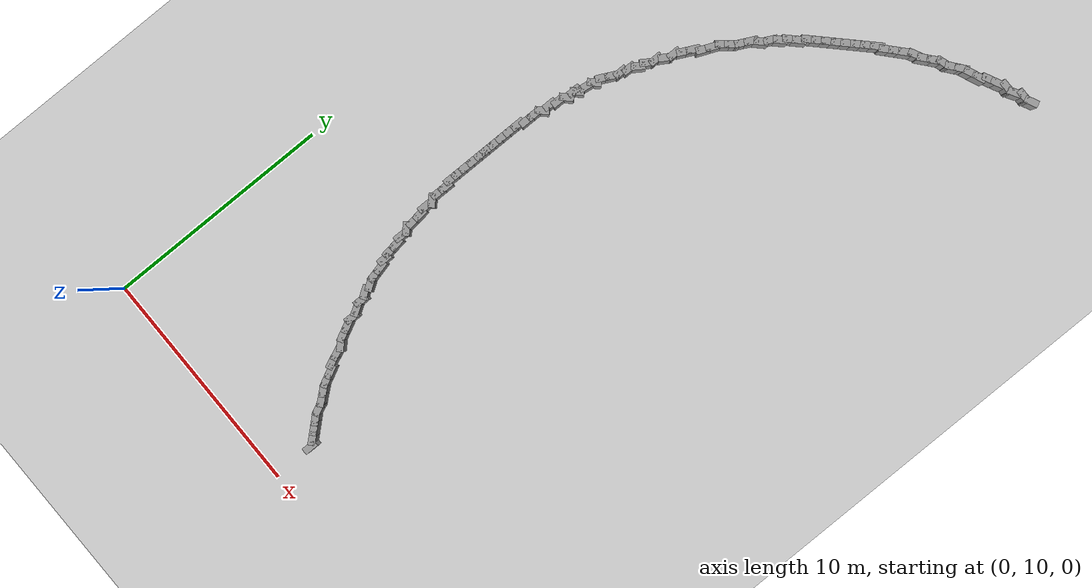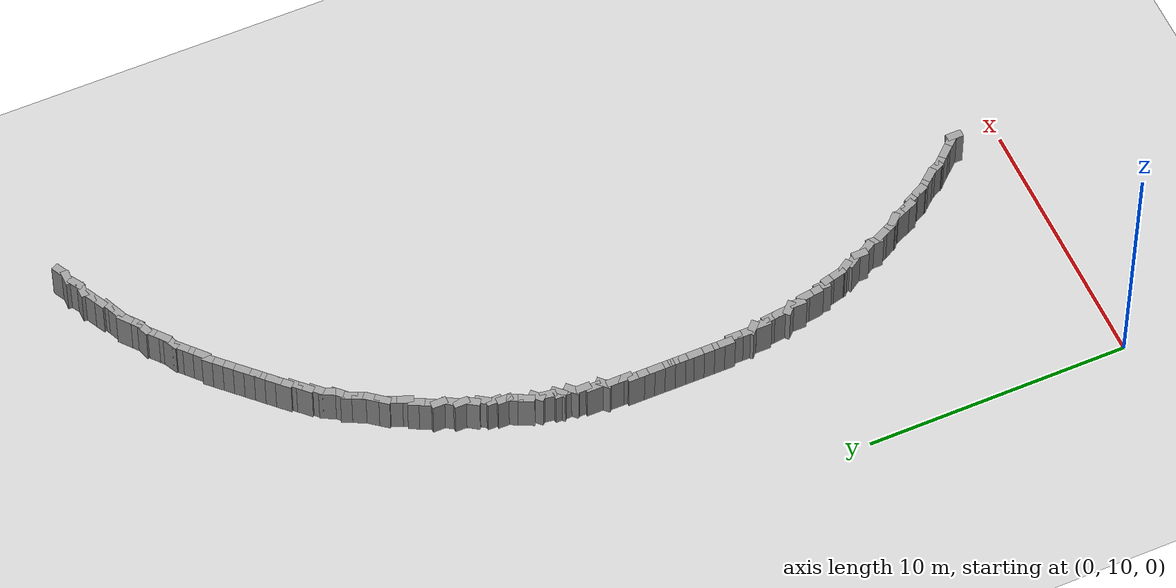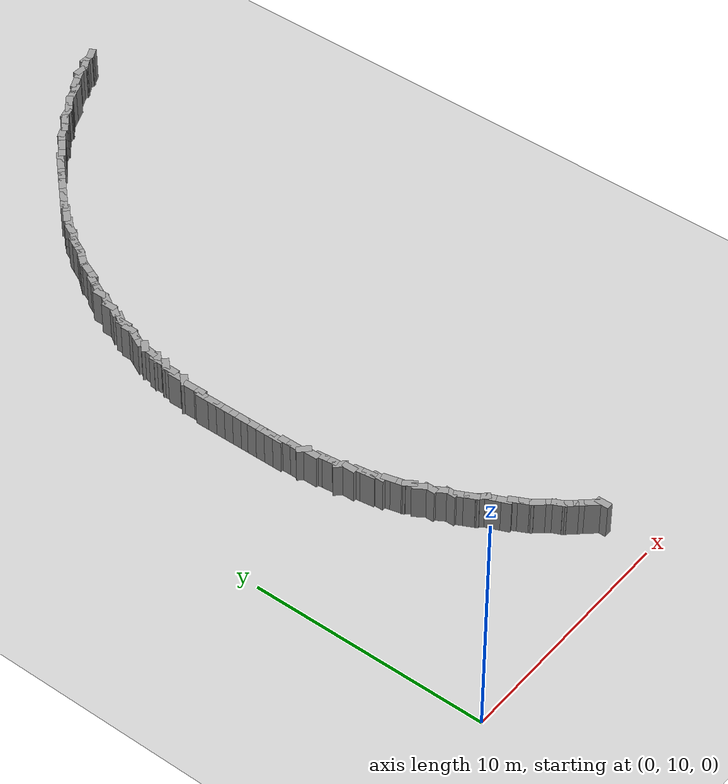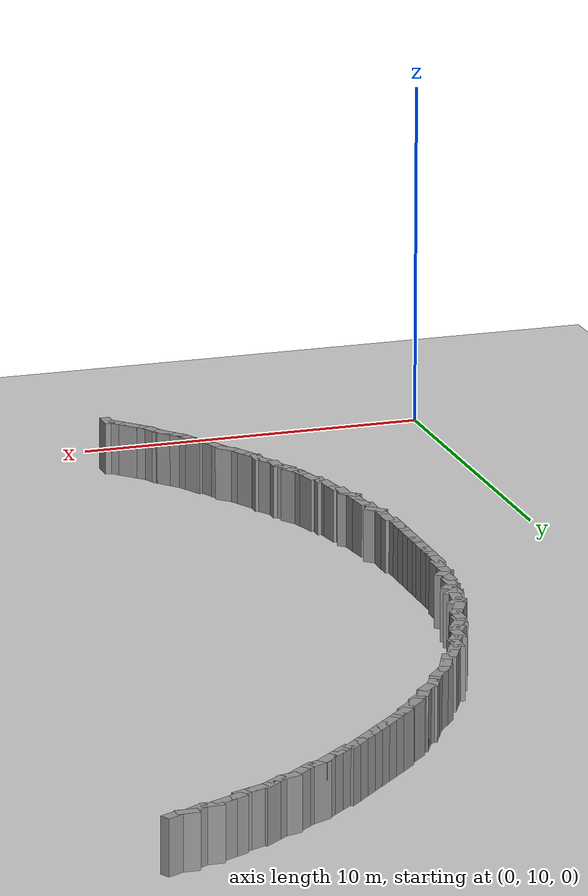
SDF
<sdf version="1.5">
 <world name="test_figure8">
  <include><uri>model://sun</uri></include>
  <include><uri>model://ground_plane</uri></include>
  <model name="curbL_0">
   <static>true</static>
   <pose>5.500 29.400 0.750 0 0 -1.571</pose>
   <link name="link">
    <collision name="collision"><geometry><box><size>0.600 0.300 1.500</size></box></geometry></collision>
    <visual name="visual">
     <geometry><box><size>0.600 0.300 1.500</size></box></geometry>
     <material><ambient>0.6 0.6 0.6 1</ambient><diffuse>0.6 0.6 0.6 1</diffuse></material>
    </visual>
   </link>
  </model>
  <model name="curbL_1">
   <static>true</static>
   <pose>5.500 29.000 0.750 0 0 -2.356</pose>
   <link name="link">
    <collision name="collision"><geometry><box><size>0.600 0.300 1.500</size></box></geometry></collision>
    <visual name="visual">
     <geometry><box><size>0.600 0.300 1.500</size></box></geometry>
     <material><ambient>0.6 0.6 0.6 1</ambient><diffuse>0.6 0.6 0.6 1</diffuse></material>
    </visual>
   </link>
  </model>
  <model name="curbL_2">
   <static>true</static>
   <pose>5.400 28.641 0.750 0 0 -1.571</pose>
   <link name="link">
    <collision name="collision"><geometry><box><size>0.600 0.300 1.500</size></box></geometry></collision>
    <visual name="visual">
     <geometry><box><size>0.600 0.300 1.500</size></box></geometry>
     <material><ambient>0.6 0.6 0.6 1</ambient><diffuse>0.6 0.6 0.6 1</diffuse></material>
    </visual>
   </link>
  </model>
  <model name="curbL_3">
   <static>true</static>
   <pose>5.300 28.283 0.750 0 0 -1.571</pose>
   <link name="link">
    <collision name="collision"><geometry><box><size>0.600 0.300 1.500</size></box></geometry></collision>
    <visual name="visual">
     <geometry><box><size>0.600 0.300 1.500</size></box></geometry>
     <material><ambient>0.6 0.6 0.6 1</ambient><diffuse>0.6 0.6 0.6 1</diffuse></material>
    </visual>
   </link>
  </model>
  <model name="curbL_4">
   <static>true</static>
   <pose>5.288 27.888 0.750 0 0 -2.356</pose>
   <link name="link">
    <collision name="collision"><geometry><box><size>0.600 0.300 1.500</size></box></geometry></collision>
    <visual name="visual">
     <geometry><box><size>0.600 0.300 1.500</size></box></geometry>
     <material><ambient>0.6 0.6 0.6 1</ambient><diffuse>0.6 0.6 0.6 1</diffuse></material>
    </visual>
   </link>
  </model>
  <model name="curbL_5">
   <static>true</static>
   <pose>5.200 27.524 0.750 0 0 -1.571</pose>
   <link name="link">
    <collision name="collision"><geometry><box><size>0.600 0.300 1.500</size></box></geometry></collision>
    <visual name="visual">
     <geometry><box><size>0.600 0.300 1.500</size></box></geometry>
     <material><ambient>0.6 0.6 0.6 1</ambient><diffuse>0.6 0.6 0.6 1</diffuse></material>
    </visual>
   </link>
  </model>
  <model name="curbL_6">
   <static>true</static>
   <pose>5.200 27.124 0.750 0 0 -1.571</pose>
   <link name="link">
    <collision name="collision"><geometry><box><size>0.600 0.300 1.500</size></box></geometry></collision>
    <visual name="visual">
     <geometry><box><size>0.600 0.300 1.500</size></box></geometry>
     <material><ambient>0.6 0.6 0.6 1</ambient><diffuse>0.6 0.6 0.6 1</diffuse></material>
    </visual>
   </link>
  </model>
  <model name="curbL_7">
   <static>true</static>
   <pose>5.100 26.766 0.750 0 0 -1.571</pose>
   <link name="link">
    <collision name="collision"><geometry><box><size>0.600 0.300 1.500</size></box></geometry></collision>
    <visual name="visual">
     <geometry><box><size>0.600 0.300 1.500</size></box></geometry>
     <material><ambient>0.6 0.6 0.6 1</ambient><diffuse>0.6 0.6 0.6 1</diffuse></material>
    </visual>
   </link>
  </model>
  <model name="curbL_8">
   <static>true</static>
   <pose>5.100 26.366 0.750 0 0 -1.571</pose>
   <link name="link">
    <collision name="collision"><geometry><box><size>0.600 0.300 1.500</size></box></geometry></collision>
    <visual name="visual">
     <geometry><box><size>0.600 0.300 1.500</size></box></geometry>
     <material><ambient>0.6 0.6 0.6 1</ambient><diffuse>0.6 0.6 0.6 1</diffuse></material>
    </visual>
   </link>
  </model>
  <model name="curbL_9">
   <static>true</static>
   <pose>5.100 25.966 0.750 0 0 -1.571</pose>
   <link name="link">
    <collision name="collision"><geometry><box><size>0.600 0.300 1.500</size></box></geometry></collision>
    <visual name="visual">
     <geometry><box><size>0.600 0.300 1.500</size></box></geometry>
     <material><ambient>0.6 0.6 0.6 1</ambient><diffuse>0.6 0.6 0.6 1</diffuse></material>
    </visual>
   </link>
  </model>
  <model name="curbL_10">
   <static>true</static>
   <pose>5.100 25.566 0.750 0 0 -1.571</pose>
   <link name="link">
    <collision name="collision"><geometry><box><size>0.600 0.300 1.500</size></box></geometry></collision>
    <visual name="visual">
     <geometry><box><size>0.600 0.300 1.500</size></box></geometry>
     <material><ambient>0.6 0.6 0.6 1</ambient><diffuse>0.6 0.6 0.6 1</diffuse></material>
    </visual>
   </link>
  </model>
  <model name="curbL_11">
   <static>true</static>
   <pose>5.100 25.166 0.750 0 0 -1.571</pose>
   <link name="link">
    <collision name="collision"><geometry><box><size>0.600 0.300 1.500</size></box></geometry></collision>
    <visual name="visual">
     <geometry><box><size>0.600 0.300 1.500</size></box></geometry>
     <material><ambient>0.6 0.6 0.6 1</ambient><diffuse>0.6 0.6 0.6 1</diffuse></material>
    </visual>
   </link>
  </model>
  <model name="curbL_12">
   <static>true</static>
   <pose>5.100 24.849 0.750 0 0 -1.571</pose>
   <link name="link">
    <collision name="collision"><geometry><box><size>0.600 0.300 1.500</size></box></geometry></collision>
    <visual name="visual">
     <geometry><box><size>0.600 0.300 1.500</size></box></geometry>
     <material><ambient>0.6 0.6 0.6 1</ambient><diffuse>0.6 0.6 0.6 1</diffuse></material>
    </visual>
   </link>
  </model>
  <model name="curbL_13">
   <static>true</static>
   <pose>5.100 24.449 0.750 0 0 -1.571</pose>
   <link name="link">
    <collision name="collision"><geometry><box><size>0.600 0.300 1.500</size></box></geometry></collision>
    <visual name="visual">
     <geometry><box><size>0.600 0.300 1.500</size></box></geometry>
     <material><ambient>0.6 0.6 0.6 1</ambient><diffuse>0.6 0.6 0.6 1</diffuse></material>
    </visual>
   </link>
  </model>
  <model name="curbL_14">
   <static>true</static>
   <pose>5.100 24.049 0.750 0 0 -1.571</pose>
   <link name="link">
    <collision name="collision"><geometry><box><size>0.600 0.300 1.500</size></box></geometry></collision>
    <visual name="visual">
     <geometry><box><size>0.600 0.300 1.500</size></box></geometry>
     <material><ambient>0.6 0.6 0.6 1</ambient><diffuse>0.6 0.6 0.6 1</diffuse></material>
    </visual>
   </link>
  </model>
  <model name="curbL_15">
   <static>true</static>
   <pose>5.100 23.649 0.750 0 0 -1.571</pose>
   <link name="link">
    <collision name="collision"><geometry><box><size>0.600 0.300 1.500</size></box></geometry></collision>
    <visual name="visual">
     <geometry><box><size>0.600 0.300 1.500</size></box></geometry>
     <material><ambient>0.6 0.6 0.6 1</ambient><diffuse>0.6 0.6 0.6 1</diffuse></material>
    </visual>
   </link>
  </model>
  <model name="curbL_16">
   <static>true</static>
   <pose>5.100 23.249 0.750 0 0 -1.571</pose>
   <link name="link">
    <collision name="collision"><geometry><box><size>0.600 0.300 1.500</size></box></geometry></collision>
    <visual name="visual">
     <geometry><box><size>0.600 0.300 1.500</size></box></geometry>
     <material><ambient>0.6 0.6 0.6 1</ambient><diffuse>0.6 0.6 0.6 1</diffuse></material>
    </visual>
   </link>
  </model>
  <model name="curbL_17">
   <static>true</static>
   <pose>5.200 22.890 0.750 0 0 -1.571</pose>
   <link name="link">
    <collision name="collision"><geometry><box><size>0.600 0.300 1.500</size></box></geometry></collision>
    <visual name="visual">
     <geometry><box><size>0.600 0.300 1.500</size></box></geometry>
     <material><ambient>0.6 0.6 0.6 1</ambient><diffuse>0.6 0.6 0.6 1</diffuse></material>
    </visual>
   </link>
  </model>
  <model name="curbL_18">
   <static>true</static>
   <pose>5.200 22.490 0.750 0 0 -1.571</pose>
   <link name="link">
    <collision name="collision"><geometry><box><size>0.600 0.300 1.500</size></box></geometry></collision>
    <visual name="visual">
     <geometry><box><size>0.600 0.300 1.500</size></box></geometry>
     <material><ambient>0.6 0.6 0.6 1</ambient><diffuse>0.6 0.6 0.6 1</diffuse></material>
    </visual>
   </link>
  </model>
  <model name="curbL_19">
   <static>true</static>
   <pose>5.278 22.122 0.750 0 0 -0.785</pose>
   <link name="link">
    <collision name="collision"><geometry><box><size>0.600 0.300 1.500</size></box></geometry></collision>
    <visual name="visual">
     <geometry><box><size>0.600 0.300 1.500</size></box></geometry>
     <material><ambient>0.6 0.6 0.6 1</ambient><diffuse>0.6 0.6 0.6 1</diffuse></material>
    </visual>
   </link>
  </model>
  <model name="curbL_20">
   <static>true</static>
   <pose>5.300 21.731 0.750 0 0 -1.571</pose>
   <link name="link">
    <collision name="collision"><geometry><box><size>0.600 0.300 1.500</size></box></geometry></collision>
    <visual name="visual">
     <geometry><box><size>0.600 0.300 1.500</size></box></geometry>
     <material><ambient>0.6 0.6 0.6 1</ambient><diffuse>0.6 0.6 0.6 1</diffuse></material>
    </visual>
   </link>
  </model>
  <model name="curbL_21">
   <static>true</static>
   <pose>5.414 21.374 0.750 0 0 -1.460</pose>
   <link name="link">
    <collision name="collision"><geometry><box><size>0.600 0.300 1.500</size></box></geometry></collision>
    <visual name="visual">
     <geometry><box><size>0.600 0.300 1.500</size></box></geometry>
     <material><ambient>0.6 0.6 0.6 1</ambient><diffuse>0.6 0.6 0.6 1</diffuse></material>
    </visual>
   </link>
  </model>
  <model name="curbL_22">
   <static>true</static>
   <pose>5.458 20.976 0.750 0 0 -1.460</pose>
   <link name="link">
    <collision name="collision"><geometry><box><size>0.600 0.300 1.500</size></box></geometry></collision>
    <visual name="visual">
     <geometry><box><size>0.600 0.300 1.500</size></box></geometry>
     <material><ambient>0.6 0.6 0.6 1</ambient><diffuse>0.6 0.6 0.6 1</diffuse></material>
    </visual>
   </link>
  </model>
  <model name="curbL_23">
   <static>true</static>
   <pose>5.515 20.585 0.750 0 0 -0.785</pose>
   <link name="link">
    <collision name="collision"><geometry><box><size>0.600 0.300 1.500</size></box></geometry></collision>
    <visual name="visual">
     <geometry><box><size>0.600 0.300 1.500</size></box></geometry>
     <material><ambient>0.6 0.6 0.6 1</ambient><diffuse>0.6 0.6 0.6 1</diffuse></material>
    </visual>
   </link>
  </model>
  <model name="curbL_24">
   <static>true</static>
   <pose>5.600 20.220 0.750 0 0 -1.571</pose>
   <link name="link">
    <collision name="collision"><geometry><box><size>0.600 0.300 1.500</size></box></geometry></collision>
    <visual name="visual">
     <geometry><box><size>0.600 0.300 1.500</size></box></geometry>
     <material><ambient>0.6 0.6 0.6 1</ambient><diffuse>0.6 0.6 0.6 1</diffuse></material>
    </visual>
   </link>
  </model>
  <model name="curbL_25">
   <static>true</static>
   <pose>5.734 19.864 0.750 0 0 -1.429</pose>
   <link name="link">
    <collision name="collision"><geometry><box><size>0.600 0.300 1.500</size></box></geometry></collision>
    <visual name="visual">
     <geometry><box><size>0.600 0.300 1.500</size></box></geometry>
     <material><ambient>0.6 0.6 0.6 1</ambient><diffuse>0.6 0.6 0.6 1</diffuse></material>
    </visual>
   </link>
  </model>
  <model name="curbL_26">
   <static>true</static>
   <pose>5.790 19.468 0.750 0 0 -1.429</pose>
   <link name="link">
    <collision name="collision"><geometry><box><size>0.600 0.300 1.500</size></box></geometry></collision>
    <visual name="visual">
     <geometry><box><size>0.600 0.300 1.500</size></box></geometry>
     <material><ambient>0.6 0.6 0.6 1</ambient><diffuse>0.6 0.6 0.6 1</diffuse></material>
    </visual>
   </link>
  </model>
  <model name="curbL_27">
   <static>true</static>
   <pose>5.900 19.110 0.750 0 0 -1.571</pose>
   <link name="link">
    <collision name="collision"><geometry><box><size>0.600 0.300 1.500</size></box></geometry></collision>
    <visual name="visual">
     <geometry><box><size>0.600 0.300 1.500</size></box></geometry>
     <material><ambient>0.6 0.6 0.6 1</ambient><diffuse>0.6 0.6 0.6 1</diffuse></material>
    </visual>
   </link>
  </model>
  <model name="curbL_28">
   <static>true</static>
   <pose>6.060 18.759 0.750 0 0 -1.326</pose>
   <link name="link">
    <collision name="collision"><geometry><box><size>0.600 0.300 1.500</size></box></geometry></collision>
    <visual name="visual">
     <geometry><box><size>0.600 0.300 1.500</size></box></geometry>
     <material><ambient>0.6 0.6 0.6 1</ambient><diffuse>0.6 0.6 0.6 1</diffuse></material>
    </visual>
   </link>
  </model>
  <model name="curbL_29">
   <static>true</static>
   <pose>6.157 18.370 0.750 0 0 -1.326</pose>
   <link name="link">
    <collision name="collision"><geometry><box><size>0.600 0.300 1.500</size></box></geometry></collision>
    <visual name="visual">
     <geometry><box><size>0.600 0.300 1.500</size></box></geometry>
     <material><ambient>0.6 0.6 0.6 1</ambient><diffuse>0.6 0.6 0.6 1</diffuse></material>
    </visual>
   </link>
  </model>
  <model name="curbL_30">
   <static>true</static>
   <pose>6.324 18.013 0.750 0 0 -0.983</pose>
   <link name="link">
    <collision name="collision"><geometry><box><size>0.600 0.300 1.500</size></box></geometry></collision>
    <visual name="visual">
     <geometry><box><size>0.600 0.300 1.500</size></box></geometry>
     <material><ambient>0.6 0.6 0.6 1</ambient><diffuse>0.6 0.6 0.6 1</diffuse></material>
    </visual>
   </link>
  </model>
  <model name="curbL_31">
   <static>true</static>
   <pose>6.435 17.647 0.750 0 0 -0.983</pose>
   <link name="link">
    <collision name="collision"><geometry><box><size>0.600 0.300 1.500</size></box></geometry></collision>
    <visual name="visual">
     <geometry><box><size>0.600 0.300 1.500</size></box></geometry>
     <material><ambient>0.6 0.6 0.6 1</ambient><diffuse>0.6 0.6 0.6 1</diffuse></material>
    </visual>
   </link>
  </model>
  <model name="curbL_32">
   <static>true</static>
   <pose>6.600 17.297 0.750 0 0 -1.571</pose>
   <link name="link">
    <collision name="collision"><geometry><box><size>0.600 0.300 1.500</size></box></geometry></collision>
    <visual name="visual">
     <geometry><box><size>0.600 0.300 1.500</size></box></geometry>
     <material><ambient>0.6 0.6 0.6 1</ambient><diffuse>0.6 0.6 0.6 1</diffuse></material>
    </visual>
   </link>
  </model>
  <model name="curbL_33">
   <static>true</static>
   <pose>6.756 16.940 0.750 0 0 -1.030</pose>
   <link name="link">
    <collision name="collision"><geometry><box><size>0.600 0.300 1.500</size></box></geometry></collision>
    <visual name="visual">
     <geometry><box><size>0.600 0.300 1.500</size></box></geometry>
     <material><ambient>0.6 0.6 0.6 1</ambient><diffuse>0.6 0.6 0.6 1</diffuse></material>
    </visual>
   </link>
  </model>
  <model name="curbL_34">
   <static>true</static>
   <pose>6.900 16.580 0.750 0 0 -1.571</pose>
   <link name="link">
    <collision name="collision"><geometry><box><size>0.600 0.300 1.500</size></box></geometry></collision>
    <visual name="visual">
     <geometry><box><size>0.600 0.300 1.500</size></box></geometry>
     <material><ambient>0.6 0.6 0.6 1</ambient><diffuse>0.6 0.6 0.6 1</diffuse></material>
    </visual>
   </link>
  </model>
  <model name="curbL_35">
   <static>true</static>
   <pose>7.043 16.214 0.750 0 0 -1.107</pose>
   <link name="link">
    <collision name="collision"><geometry><box><size>0.600 0.300 1.500</size></box></geometry></collision>
    <visual name="visual">
     <geometry><box><size>0.600 0.300 1.500</size></box></geometry>
     <material><ambient>0.6 0.6 0.6 1</ambient><diffuse>0.6 0.6 0.6 1</diffuse></material>
    </visual>
   </link>
  </model>
  <model name="curbL_36">
   <static>true</static>
   <pose>7.222 15.856 0.750 0 0 -1.107</pose>
   <link name="link">
    <collision name="collision"><geometry><box><size>0.600 0.300 1.500</size></box></geometry></collision>
    <visual name="visual">
     <geometry><box><size>0.600 0.300 1.500</size></box></geometry>
     <material><ambient>0.6 0.6 0.6 1</ambient><diffuse>0.6 0.6 0.6 1</diffuse></material>
    </visual>
   </link>
  </model>
  <model name="curbL_37">
   <static>true</static>
   <pose>7.460 15.540 0.750 0 0 -0.785</pose>
   <link name="link">
    <collision name="collision"><geometry><box><size>0.600 0.300 1.500</size></box></geometry></collision>
    <visual name="visual">
     <geometry><box><size>0.600 0.300 1.500</size></box></geometry>
     <material><ambient>0.6 0.6 0.6 1</ambient><diffuse>0.6 0.6 0.6 1</diffuse></material>
    </visual>
   </link>
  </model>
  <model name="curbL_38">
   <static>true</static>
   <pose>7.635 15.185 0.750 0 0 -1.166</pose>
   <link name="link">
    <collision name="collision"><geometry><box><size>0.600 0.300 1.500</size></box></geometry></collision>
    <visual name="visual">
     <geometry><box><size>0.600 0.300 1.500</size></box></geometry>
     <material><ambient>0.6 0.6 0.6 1</ambient><diffuse>0.6 0.6 0.6 1</diffuse></material>
    </visual>
   </link>
  </model>
  <model name="curbL_39">
   <static>true</static>
   <pose>7.793 14.817 0.750 0 0 -1.166</pose>
   <link name="link">
    <collision name="collision"><geometry><box><size>0.600 0.300 1.500</size></box></geometry></collision>
    <visual name="visual">
     <geometry><box><size>0.600 0.300 1.500</size></box></geometry>
     <material><ambient>0.6 0.6 0.6 1</ambient><diffuse>0.6 0.6 0.6 1</diffuse></material>
    </visual>
   </link>
  </model>
  <model name="curbL_40">
   <static>true</static>
   <pose>8.044 14.512 0.750 0 0 -1.107</pose>
   <link name="link">
    <collision name="collision"><geometry><box><size>0.600 0.300 1.500</size></box></geometry></collision>
    <visual name="visual">
     <geometry><box><size>0.600 0.300 1.500</size></box></geometry>
     <material><ambient>0.6 0.6 0.6 1</ambient><diffuse>0.6 0.6 0.6 1</diffuse></material>
    </visual>
   </link>
  </model>
  <model name="curbL_41">
   <static>true</static>
   <pose>8.223 14.154 0.750 0 0 -1.107</pose>
   <link name="link">
    <collision name="collision"><geometry><box><size>0.600 0.300 1.500</size></box></geometry></collision>
    <visual name="visual">
     <geometry><box><size>0.600 0.300 1.500</size></box></geometry>
     <material><ambient>0.6 0.6 0.6 1</ambient><diffuse>0.6 0.6 0.6 1</diffuse></material>
    </visual>
   </link>
  </model>
  <model name="curbL_42">
   <static>true</static>
   <pose>8.446 13.825 0.750 0 0 -0.876</pose>
   <link name="link">
    <collision name="collision"><geometry><box><size>0.600 0.300 1.500</size></box></geometry></collision>
    <visual name="visual">
     <geometry><box><size>0.600 0.300 1.500</size></box></geometry>
     <material><ambient>0.6 0.6 0.6 1</ambient><diffuse>0.6 0.6 0.6 1</diffuse></material>
    </visual>
   </link>
  </model>
  <model name="curbL_43">
   <static>true</static>
   <pose>8.702 13.518 0.750 0 0 -0.876</pose>
   <link name="link">
    <collision name="collision"><geometry><box><size>0.600 0.300 1.500</size></box></geometry></collision>
    <visual name="visual">
     <geometry><box><size>0.600 0.300 1.500</size></box></geometry>
     <material><ambient>0.6 0.6 0.6 1</ambient><diffuse>0.6 0.6 0.6 1</diffuse></material>
    </visual>
   </link>
  </model>
  <model name="curbL_44">
   <static>true</static>
   <pose>8.910 13.180 0.750 0 0 -1.107</pose>
   <link name="link">
    <collision name="collision"><geometry><box><size>0.600 0.300 1.500</size></box></geometry></collision>
    <visual name="visual">
     <geometry><box><size>0.600 0.300 1.500</size></box></geometry>
     <material><ambient>0.6 0.6 0.6 1</ambient><diffuse>0.6 0.6 0.6 1</diffuse></material>
    </visual>
   </link>
  </model>
  <model name="curbL_45">
   <static>true</static>
   <pose>9.133 12.852 0.750 0 0 -0.838</pose>
   <link name="link">
    <collision name="collision"><geometry><box><size>0.600 0.300 1.500</size></box></geometry></collision>
    <visual name="visual">
     <geometry><box><size>0.600 0.300 1.500</size></box></geometry>
     <material><ambient>0.6 0.6 0.6 1</ambient><diffuse>0.6 0.6 0.6 1</diffuse></material>
    </visual>
   </link>
  </model>
  <model name="curbL_46">
   <static>true</static>
   <pose>9.401 12.555 0.750 0 0 -0.838</pose>
   <link name="link">
    <collision name="collision"><geometry><box><size>0.600 0.300 1.500</size></box></geometry></collision>
    <visual name="visual">
     <geometry><box><size>0.600 0.300 1.500</size></box></geometry>
     <material><ambient>0.6 0.6 0.6 1</ambient><diffuse>0.6 0.6 0.6 1</diffuse></material>
    </visual>
   </link>
  </model>
  <model name="curbL_47">
   <static>true</static>
   <pose>9.668 12.257 0.750 0 0 -0.838</pose>
   <link name="link">
    <collision name="collision"><geometry><box><size>0.600 0.300 1.500</size></box></geometry></collision>
    <visual name="visual">
     <geometry><box><size>0.600 0.300 1.500</size></box></geometry>
     <material><ambient>0.6 0.6 0.6 1</ambient><diffuse>0.6 0.6 0.6 1</diffuse></material>
    </visual>
   </link>
  </model>
  <model name="curbL_48">
   <static>true</static>
   <pose>9.900 11.946 0.750 0 0 -1.571</pose>
   <link name="link">
    <collision name="collision"><geometry><box><size>0.600 0.300 1.500</size></box></geometry></collision>
    <visual name="visual">
     <geometry><box><size>0.600 0.300 1.500</size></box></geometry>
     <material><ambient>0.6 0.6 0.6 1</ambient><diffuse>0.6 0.6 0.6 1</diffuse></material>
    </visual>
   </link>
  </model>
  <model name="curbL_447">
   <static>true</static>
   <pose>17.597 43.498 0.750 0 0 -2.678</pose>
   <link name="link">
    <collision name="collision"><geometry><box><size>0.600 0.300 1.500</size></box></geometry></collision>
    <visual name="visual">
     <geometry><box><size>0.600 0.300 1.500</size></box></geometry>
     <material><ambient>0.6 0.6 0.6 1</ambient><diffuse>0.6 0.6 0.6 1</diffuse></material>
    </visual>
   </link>
  </model>
  <model name="curbL_448">
   <static>true</static>
   <pose>17.220 43.400 0.750 0 0 3.142</pose>
   <link name="link">
    <collision name="collision"><geometry><box><size>0.600 0.300 1.500</size></box></geometry></collision>
    <visual name="visual">
     <geometry><box><size>0.600 0.300 1.500</size></box></geometry>
     <material><ambient>0.6 0.6 0.6 1</ambient><diffuse>0.6 0.6 0.6 1</diffuse></material>
    </visual>
   </link>
  </model>
  <model name="curbL_449">
   <static>true</static>
   <pose>16.874 43.204 0.750 0 0 -2.601</pose>
   <link name="link">
    <collision name="collision"><geometry><box><size>0.600 0.300 1.500</size></box></geometry></collision>
    <visual name="visual">
     <geometry><box><size>0.600 0.300 1.500</size></box></geometry>
     <material><ambient>0.6 0.6 0.6 1</ambient><diffuse>0.6 0.6 0.6 1</diffuse></material>
    </visual>
   </link>
  </model>
  <model name="curbL_450">
   <static>true</static>
   <pose>16.503 43.100 0.750 0 0 3.142</pose>
   <link name="link">
    <collision name="collision"><geometry><box><size>0.600 0.300 1.500</size></box></geometry></collision>
    <visual name="visual">
     <geometry><box><size>0.600 0.300 1.500</size></box></geometry>
     <material><ambient>0.6 0.6 0.6 1</ambient><diffuse>0.6 0.6 0.6 1</diffuse></material>
    </visual>
   </link>
  </model>
  <model name="curbL_451">
   <static>true</static>
   <pose>16.145 42.922 0.750 0 0 -2.678</pose>
   <link name="link">
    <collision name="collision"><geometry><box><size>0.600 0.300 1.500</size></box></geometry></collision>
    <visual name="visual">
     <geometry><box><size>0.600 0.300 1.500</size></box></geometry>
     <material><ambient>0.6 0.6 0.6 1</ambient><diffuse>0.6 0.6 0.6 1</diffuse></material>
    </visual>
   </link>
  </model>
  <model name="curbL_452">
   <static>true</static>
   <pose>15.787 42.743 0.750 0 0 -2.678</pose>
   <link name="link">
    <collision name="collision"><geometry><box><size>0.600 0.300 1.500</size></box></geometry></collision>
    <visual name="visual">
     <geometry><box><size>0.600 0.300 1.500</size></box></geometry>
     <material><ambient>0.6 0.6 0.6 1</ambient><diffuse>0.6 0.6 0.6 1</diffuse></material>
    </visual>
   </link>
  </model>
  <model name="curbL_453">
   <static>true</static>
   <pose>15.482 42.492 0.750 0 0 -2.737</pose>
   <link name="link">
    <collision name="collision"><geometry><box><size>0.600 0.300 1.500</size></box></geometry></collision>
    <visual name="visual">
     <geometry><box><size>0.600 0.300 1.500</size></box></geometry>
     <material><ambient>0.6 0.6 0.6 1</ambient><diffuse>0.6 0.6 0.6 1</diffuse></material>
    </visual>
   </link>
  </model>
  <model name="curbL_454">
   <static>true</static>
   <pose>15.114 42.335 0.750 0 0 -2.737</pose>
   <link name="link">
    <collision name="collision"><geometry><box><size>0.600 0.300 1.500</size></box></geometry></collision>
    <visual name="visual">
     <geometry><box><size>0.600 0.300 1.500</size></box></geometry>
     <material><ambient>0.6 0.6 0.6 1</ambient><diffuse>0.6 0.6 0.6 1</diffuse></material>
    </visual>
   </link>
  </model>
  <model name="curbL_455">
   <static>true</static>
   <pose>14.754 42.164 0.750 0 0 -2.467</pose>
   <link name="link">
    <collision name="collision"><geometry><box><size>0.600 0.300 1.500</size></box></geometry></collision>
    <visual name="visual">
     <geometry><box><size>0.600 0.300 1.500</size></box></geometry>
     <material><ambient>0.6 0.6 0.6 1</ambient><diffuse>0.6 0.6 0.6 1</diffuse></material>
    </visual>
   </link>
  </model>
  <model name="curbL_456">
   <static>true</static>
   <pose>14.442 41.914 0.750 0 0 -2.467</pose>
   <link name="link">
    <collision name="collision"><geometry><box><size>0.600 0.300 1.500</size></box></geometry></collision>
    <visual name="visual">
     <geometry><box><size>0.600 0.300 1.500</size></box></geometry>
     <material><ambient>0.6 0.6 0.6 1</ambient><diffuse>0.6 0.6 0.6 1</diffuse></material>
    </visual>
   </link>
  </model>
  <model name="curbL_457">
   <static>true</static>
   <pose>14.093 41.731 0.750 0 0 -2.820</pose>
   <link name="link">
    <collision name="collision"><geometry><box><size>0.600 0.300 1.500</size></box></geometry></collision>
    <visual name="visual">
     <geometry><box><size>0.600 0.300 1.500</size></box></geometry>
     <material><ambient>0.6 0.6 0.6 1</ambient><diffuse>0.6 0.6 0.6 1</diffuse></material>
    </visual>
   </link>
  </model>
  <model name="curbL_458">
   <static>true</static>
   <pose>13.768 41.507 0.750 0 0 -2.447</pose>
   <link name="link">
    <collision name="collision"><geometry><box><size>0.600 0.300 1.500</size></box></geometry></collision>
    <visual name="visual">
     <geometry><box><size>0.600 0.300 1.500</size></box></geometry>
     <material><ambient>0.6 0.6 0.6 1</ambient><diffuse>0.6 0.6 0.6 1</diffuse></material>
    </visual>
   </link>
  </model>
  <model name="curbL_459">
   <static>true</static>
   <pose>13.461 41.251 0.750 0 0 -2.447</pose>
   <link name="link">
    <collision name="collision"><geometry><box><size>0.600 0.300 1.500</size></box></geometry></collision>
    <visual name="visual">
     <geometry><box><size>0.600 0.300 1.500</size></box></geometry>
     <material><ambient>0.6 0.6 0.6 1</ambient><diffuse>0.6 0.6 0.6 1</diffuse></material>
    </visual>
   </link>
  </model>
  <model name="curbL_460">
   <static>true</static>
   <pose>13.113 41.057 0.750 0 0 -2.678</pose>
   <link name="link">
    <collision name="collision"><geometry><box><size>0.600 0.300 1.500</size></box></geometry></collision>
    <visual name="visual">
     <geometry><box><size>0.600 0.300 1.500</size></box></geometry>
     <material><ambient>0.6 0.6 0.6 1</ambient><diffuse>0.6 0.6 0.6 1</diffuse></material>
    </visual>
   </link>
  </model>
  <model name="curbL_461">
   <static>true</static>
   <pose>12.797 40.817 0.750 0 0 -2.409</pose>
   <link name="link">
    <collision name="collision"><geometry><box><size>0.600 0.300 1.500</size></box></geometry></collision>
    <visual name="visual">
     <geometry><box><size>0.600 0.300 1.500</size></box></geometry>
     <material><ambient>0.6 0.6 0.6 1</ambient><diffuse>0.6 0.6 0.6 1</diffuse></material>
    </visual>
   </link>
  </model>
  <model name="curbL_462">
   <static>true</static>
   <pose>12.499 40.549 0.750 0 0 -2.409</pose>
   <link name="link">
    <collision name="collision"><geometry><box><size>0.600 0.300 1.500</size></box></geometry></collision>
    <visual name="visual">
     <geometry><box><size>0.600 0.300 1.500</size></box></geometry>
     <material><ambient>0.6 0.6 0.6 1</ambient><diffuse>0.6 0.6 0.6 1</diffuse></material>
    </visual>
   </link>
  </model>
  <model name="curbL_463">
   <static>true</static>
   <pose>12.202 40.282 0.750 0 0 -2.409</pose>
   <link name="link">
    <collision name="collision"><geometry><box><size>0.600 0.300 1.500</size></box></geometry></collision>
    <visual name="visual">
     <geometry><box><size>0.600 0.300 1.500</size></box></geometry>
     <material><ambient>0.6 0.6 0.6 1</ambient><diffuse>0.6 0.6 0.6 1</diffuse></material>
    </visual>
   </link>
  </model>
  <model name="curbL_464">
   <static>true</static>
   <pose>11.880 40.080 0.750 0 0 -2.356</pose>
   <link name="link">
    <collision name="collision"><geometry><box><size>0.600 0.300 1.500</size></box></geometry></collision>
    <visual name="visual">
     <geometry><box><size>0.600 0.300 1.500</size></box></geometry>
     <material><ambient>0.6 0.6 0.6 1</ambient><diffuse>0.6 0.6 0.6 1</diffuse></material>
    </visual>
   </link>
  </model>
  <model name="curbL_465">
   <static>true</static>
   <pose>11.597 39.797 0.750 0 0 -2.356</pose>
   <link name="link">
    <collision name="collision"><geometry><box><size>0.600 0.300 1.500</size></box></geometry></collision>
    <visual name="visual">
     <geometry><box><size>0.600 0.300 1.500</size></box></geometry>
     <material><ambient>0.6 0.6 0.6 1</ambient><diffuse>0.6 0.6 0.6 1</diffuse></material>
    </visual>
   </link>
  </model>
  <model name="curbL_466">
   <static>true</static>
   <pose>11.314 39.514 0.750 0 0 -2.356</pose>
   <link name="link">
    <collision name="collision"><geometry><box><size>0.600 0.300 1.500</size></box></geometry></collision>
    <visual name="visual">
     <geometry><box><size>0.600 0.300 1.500</size></box></geometry>
     <material><ambient>0.6 0.6 0.6 1</ambient><diffuse>0.6 0.6 0.6 1</diffuse></material>
    </visual>
   </link>
  </model>
  <model name="curbL_467">
   <static>true</static>
   <pose>11.032 39.232 0.750 0 0 -2.356</pose>
   <link name="link">
    <collision name="collision"><geometry><box><size>0.600 0.300 1.500</size></box></geometry></collision>
    <visual name="visual">
     <geometry><box><size>0.600 0.300 1.500</size></box></geometry>
     <material><ambient>0.6 0.6 0.6 1</ambient><diffuse>0.6 0.6 0.6 1</diffuse></material>
    </visual>
   </link>
  </model>
  <model name="curbL_468">
   <static>true</static>
   <pose>10.749 38.949 0.750 0 0 -2.356</pose>
   <link name="link">
    <collision name="collision"><geometry><box><size>0.600 0.300 1.500</size></box></geometry></collision>
    <visual name="visual">
     <geometry><box><size>0.600 0.300 1.500</size></box></geometry>
     <material><ambient>0.6 0.6 0.6 1</ambient><diffuse>0.6 0.6 0.6 1</diffuse></material>
    </visual>
   </link>
  </model>
  <model name="curbL_469">
   <static>true</static>
   <pose>10.466 38.666 0.750 0 0 -2.356</pose>
   <link name="link">
    <collision name="collision"><geometry><box><size>0.600 0.300 1.500</size></box></geometry></collision>
    <visual name="visual">
     <geometry><box><size>0.600 0.300 1.500</size></box></geometry>
     <material><ambient>0.6 0.6 0.6 1</ambient><diffuse>0.6 0.6 0.6 1</diffuse></material>
    </visual>
   </link>
  </model>
  <model name="curbL_470">
   <static>true</static>
   <pose>10.183 38.383 0.750 0 0 -2.356</pose>
   <link name="link">
    <collision name="collision"><geometry><box><size>0.600 0.300 1.500</size></box></geometry></collision>
    <visual name="visual">
     <geometry><box><size>0.600 0.300 1.500</size></box></geometry>
     <material><ambient>0.6 0.6 0.6 1</ambient><diffuse>0.6 0.6 0.6 1</diffuse></material>
    </visual>
   </link>
  </model>
  <model name="curbL_471">
   <static>true</static>
   <pose>9.900 38.100 0.750 0 0 -2.356</pose>
   <link name="link">
    <collision name="collision"><geometry><box><size>0.600 0.300 1.500</size></box></geometry></collision>
    <visual name="visual">
     <geometry><box><size>0.600 0.300 1.500</size></box></geometry>
     <material><ambient>0.6 0.6 0.6 1</ambient><diffuse>0.6 0.6 0.6 1</diffuse></material>
    </visual>
   </link>
  </model>
  <model name="curbL_472">
   <static>true</static>
   <pose>9.688 37.788 0.750 0 0 -2.356</pose>
   <link name="link">
    <collision name="collision"><geometry><box><size>0.600 0.300 1.500</size></box></geometry></collision>
    <visual name="visual">
     <geometry><box><size>0.600 0.300 1.500</size></box></geometry>
     <material><ambient>0.6 0.6 0.6 1</ambient><diffuse>0.6 0.6 0.6 1</diffuse></material>
    </visual>
   </link>
  </model>
  <model name="curbL_473">
   <static>true</static>
   <pose>9.405 37.505 0.750 0 0 -2.356</pose>
   <link name="link">
    <collision name="collision"><geometry><box><size>0.600 0.300 1.500</size></box></geometry></collision>
    <visual name="visual">
     <geometry><box><size>0.600 0.300 1.500</size></box></geometry>
     <material><ambient>0.6 0.6 0.6 1</ambient><diffuse>0.6 0.6 0.6 1</diffuse></material>
    </visual>
   </link>
  </model>
  <model name="curbL_474">
   <static>true</static>
   <pose>9.193 37.193 0.750 0 0 -2.356</pose>
   <link name="link">
    <collision name="collision"><geometry><box><size>0.600 0.300 1.500</size></box></geometry></collision>
    <visual name="visual">
     <geometry><box><size>0.600 0.300 1.500</size></box></geometry>
     <material><ambient>0.6 0.6 0.6 1</ambient><diffuse>0.6 0.6 0.6 1</diffuse></material>
    </visual>
   </link>
  </model>
  <model name="curbL_475">
   <static>true</static>
   <pose>8.943 36.886 0.750 0 0 -2.034</pose>
   <link name="link">
    <collision name="collision"><geometry><box><size>0.600 0.300 1.500</size></box></geometry></collision>
    <visual name="visual">
     <geometry><box><size>0.600 0.300 1.500</size></box></geometry>
     <material><ambient>0.6 0.6 0.6 1</ambient><diffuse>0.6 0.6 0.6 1</diffuse></material>
    </visual>
   </link>
  </model>
  <model name="curbL_476">
   <static>true</static>
   <pose>8.744 36.544 0.750 0 0 -2.356</pose>
   <link name="link">
    <collision name="collision"><geometry><box><size>0.600 0.300 1.500</size></box></geometry></collision>
    <visual name="visual">
     <geometry><box><size>0.600 0.300 1.500</size></box></geometry>
     <material><ambient>0.6 0.6 0.6 1</ambient><diffuse>0.6 0.6 0.6 1</diffuse></material>
    </visual>
   </link>
  </model>
  <model name="curbL_477">
   <static>true</static>
   <pose>8.475 36.250 0.750 0 0 -2.034</pose>
   <link name="link">
    <collision name="collision"><geometry><box><size>0.600 0.300 1.500</size></box></geometry></collision>
    <visual name="visual">
     <geometry><box><size>0.600 0.300 1.500</size></box></geometry>
     <material><ambient>0.6 0.6 0.6 1</ambient><diffuse>0.6 0.6 0.6 1</diffuse></material>
    </visual>
   </link>
  </model>
  <model name="curbL_478">
   <static>true</static>
   <pose>8.296 35.893 0.750 0 0 -2.034</pose>
   <link name="link">
    <collision name="collision"><geometry><box><size>0.600 0.300 1.500</size></box></geometry></collision>
    <visual name="visual">
     <geometry><box><size>0.600 0.300 1.500</size></box></geometry>
     <material><ambient>0.6 0.6 0.6 1</ambient><diffuse>0.6 0.6 0.6 1</diffuse></material>
    </visual>
   </link>
  </model>
  <model name="curbL_479">
   <static>true</static>
   <pose>8.085 35.556 0.750 0 0 -2.246</pose>
   <link name="link">
    <collision name="collision"><geometry><box><size>0.600 0.300 1.500</size></box></geometry></collision>
    <visual name="visual">
     <geometry><box><size>0.600 0.300 1.500</size></box></geometry>
     <material><ambient>0.6 0.6 0.6 1</ambient><diffuse>0.6 0.6 0.6 1</diffuse></material>
    </visual>
   </link>
  </model>
  <model name="curbL_480">
   <static>true</static>
   <pose>7.835 35.243 0.750 0 0 -2.246</pose>
   <link name="link">
    <collision name="collision"><geometry><box><size>0.600 0.300 1.500</size></box></geometry></collision>
    <visual name="visual">
     <geometry><box><size>0.600 0.300 1.500</size></box></geometry>
     <material><ambient>0.6 0.6 0.6 1</ambient><diffuse>0.6 0.6 0.6 1</diffuse></material>
    </visual>
   </link>
  </model>
  <model name="curbL_481">
   <static>true</static>
   <pose>7.664 34.883 0.750 0 0 -1.976</pose>
   <link name="link">
    <collision name="collision"><geometry><box><size>0.600 0.300 1.500</size></box></geometry></collision>
    <visual name="visual">
     <geometry><box><size>0.600 0.300 1.500</size></box></geometry>
     <material><ambient>0.6 0.6 0.6 1</ambient><diffuse>0.6 0.6 0.6 1</diffuse></material>
    </visual>
   </link>
  </model>
  <model name="curbL_482">
   <static>true</static>
   <pose>7.507 34.516 0.750 0 0 -1.976</pose>
   <link name="link">
    <collision name="collision"><geometry><box><size>0.600 0.300 1.500</size></box></geometry></collision>
    <visual name="visual">
     <geometry><box><size>0.600 0.300 1.500</size></box></geometry>
     <material><ambient>0.6 0.6 0.6 1</ambient><diffuse>0.6 0.6 0.6 1</diffuse></material>
    </visual>
   </link>
  </model>
  <model name="curbL_483">
   <static>true</static>
   <pose>7.255 34.211 0.750 0 0 -2.034</pose>
   <link name="link">
    <collision name="collision"><geometry><box><size>0.600 0.300 1.500</size></box></geometry></collision>
    <visual name="visual">
     <geometry><box><size>0.600 0.300 1.500</size></box></geometry>
     <material><ambient>0.6 0.6 0.6 1</ambient><diffuse>0.6 0.6 0.6 1</diffuse></material>
    </visual>
   </link>
  </model>
  <model name="curbL_484">
   <static>true</static>
   <pose>7.076 33.853 0.750 0 0 -2.034</pose>
   <link name="link">
    <collision name="collision"><geometry><box><size>0.600 0.300 1.500</size></box></geometry></collision>
    <visual name="visual">
     <geometry><box><size>0.600 0.300 1.500</size></box></geometry>
     <material><ambient>0.6 0.6 0.6 1</ambient><diffuse>0.6 0.6 0.6 1</diffuse></material>
    </visual>
   </link>
  </model>
  <model name="curbL_485">
   <static>true</static>
   <pose>6.900 33.495 0.750 0 0 -1.571</pose>
   <link name="link">
    <collision name="collision"><geometry><box><size>0.600 0.300 1.500</size></box></geometry></collision>
    <visual name="visual">
     <geometry><box><size>0.600 0.300 1.500</size></box></geometry>
     <material><ambient>0.6 0.6 0.6 1</ambient><diffuse>0.6 0.6 0.6 1</diffuse></material>
    </visual>
   </link>
  </model>
  <model name="curbL_486">
   <static>true</static>
   <pose>6.794 33.124 0.750 0 0 -2.111</pose>
   <link name="link">
    <collision name="collision"><geometry><box><size>0.600 0.300 1.500</size></box></geometry></collision>
    <visual name="visual">
     <geometry><box><size>0.600 0.300 1.500</size></box></geometry>
     <material><ambient>0.6 0.6 0.6 1</ambient><diffuse>0.6 0.6 0.6 1</diffuse></material>
    </visual>
   </link>
  </model>
  <model name="curbL_487">
   <static>true</static>
   <pose>6.600 32.778 0.750 0 0 -1.571</pose>
   <link name="link">
    <collision name="collision"><geometry><box><size>0.600 0.300 1.500</size></box></geometry></collision>
    <visual name="visual">
     <geometry><box><size>0.600 0.300 1.500</size></box></geometry>
     <material><ambient>0.6 0.6 0.6 1</ambient><diffuse>0.6 0.6 0.6 1</diffuse></material>
    </visual>
   </link>
  </model>
  <model name="curbL_488">
   <static>true</static>
   <pose>6.477 32.415 0.750 0 0 -2.159</pose>
   <link name="link">
    <collision name="collision"><geometry><box><size>0.600 0.300 1.500</size></box></geometry></collision>
    <visual name="visual">
     <geometry><box><size>0.600 0.300 1.500</size></box></geometry>
     <material><ambient>0.6 0.6 0.6 1</ambient><diffuse>0.6 0.6 0.6 1</diffuse></material>
    </visual>
   </link>
  </model>
  <model name="curbL_489">
   <static>true</static>
   <pose>6.366 32.049 0.750 0 0 -2.159</pose>
   <link name="link">
    <collision name="collision"><geometry><box><size>0.600 0.300 1.500</size></box></geometry></collision>
    <visual name="visual">
     <geometry><box><size>0.600 0.300 1.500</size></box></geometry>
     <material><ambient>0.6 0.6 0.6 1</ambient><diffuse>0.6 0.6 0.6 1</diffuse></material>
    </visual>
   </link>
  </model>
  <model name="curbL_490">
   <static>true</static>
   <pose>6.200 31.699 0.750 0 0 -1.571</pose>
   <link name="link">
    <collision name="collision"><geometry><box><size>0.600 0.300 1.500</size></box></geometry></collision>
    <visual name="visual">
     <geometry><box><size>0.600 0.300 1.500</size></box></geometry>
     <material><ambient>0.6 0.6 0.6 1</ambient><diffuse>0.6 0.6 0.6 1</diffuse></material>
    </visual>
   </link>
  </model>
  <model name="curbL_491">
   <static>true</static>
   <pose>6.100 31.340 0.750 0 0 -1.571</pose>
   <link name="link">
    <collision name="collision"><geometry><box><size>0.600 0.300 1.500</size></box></geometry></collision>
    <visual name="visual">
     <geometry><box><size>0.600 0.300 1.500</size></box></geometry>
     <material><ambient>0.6 0.6 0.6 1</ambient><diffuse>0.6 0.6 0.6 1</diffuse></material>
    </visual>
   </link>
  </model>
  <model name="curbL_492">
   <static>true</static>
   <pose>5.992 30.984 0.750 0 0 -2.034</pose>
   <link name="link">
    <collision name="collision"><geometry><box><size>0.600 0.300 1.500</size></box></geometry></collision>
    <visual name="visual">
     <geometry><box><size>0.600 0.300 1.500</size></box></geometry>
     <material><ambient>0.6 0.6 0.6 1</ambient><diffuse>0.6 0.6 0.6 1</diffuse></material>
    </visual>
   </link>
  </model>
  <model name="curbL_493">
   <static>true</static>
   <pose>5.813 30.626 0.750 0 0 -2.034</pose>
   <link name="link">
    <collision name="collision"><geometry><box><size>0.600 0.300 1.500</size></box></geometry></collision>
    <visual name="visual">
     <geometry><box><size>0.600 0.300 1.500</size></box></geometry>
     <material><ambient>0.6 0.6 0.6 1</ambient><diffuse>0.6 0.6 0.6 1</diffuse></material>
    </visual>
   </link>
  </model>
  <model name="curbL_494">
   <static>true</static>
   <pose>5.750 30.250 0.750 0 0 -2.356</pose>
   <link name="link">
    <collision name="collision"><geometry><box><size>0.600 0.300 1.500</size></box></geometry></collision>
    <visual name="visual">
     <geometry><box><size>0.600 0.300 1.500</size></box></geometry>
     <material><ambient>0.6 0.6 0.6 1</ambient><diffuse>0.6 0.6 0.6 1</diffuse></material>
    </visual>
   </link>
  </model>
  <model name="curbL_495">
   <static>true</static>
   <pose>5.653 29.874 0.750 0 0 -1.713</pose>
   <link name="link">
    <collision name="collision"><geometry><box><size>0.600 0.300 1.500</size></box></geometry></collision>
    <visual name="visual">
     <geometry><box><size>0.600 0.300 1.500</size></box></geometry>
     <material><ambient>0.6 0.6 0.6 1</ambient><diffuse>0.6 0.6 0.6 1</diffuse></material>
    </visual>
   </link>
  </model>
  <model name="curbL_496">
   <static>true</static>
   <pose>5.584 29.484 0.750 0 0 -2.356</pose>
   <link name="link">
    <collision name="collision"><geometry><box><size>0.600 0.300 1.500</size></box></geometry></collision>
    <visual name="visual">
     <geometry><box><size>0.600 0.300 1.500</size></box></geometry>
     <material><ambient>0.6 0.6 0.6 1</ambient><diffuse>0.6 0.6 0.6 1</diffuse></material>
    </visual>
   </link>
  </model>
 </world>
</sdf>
